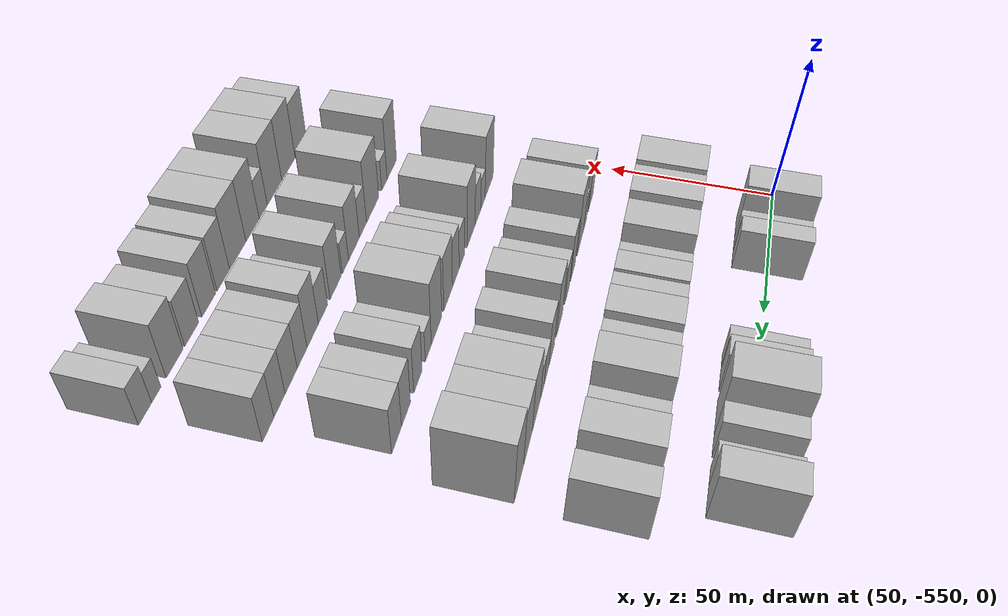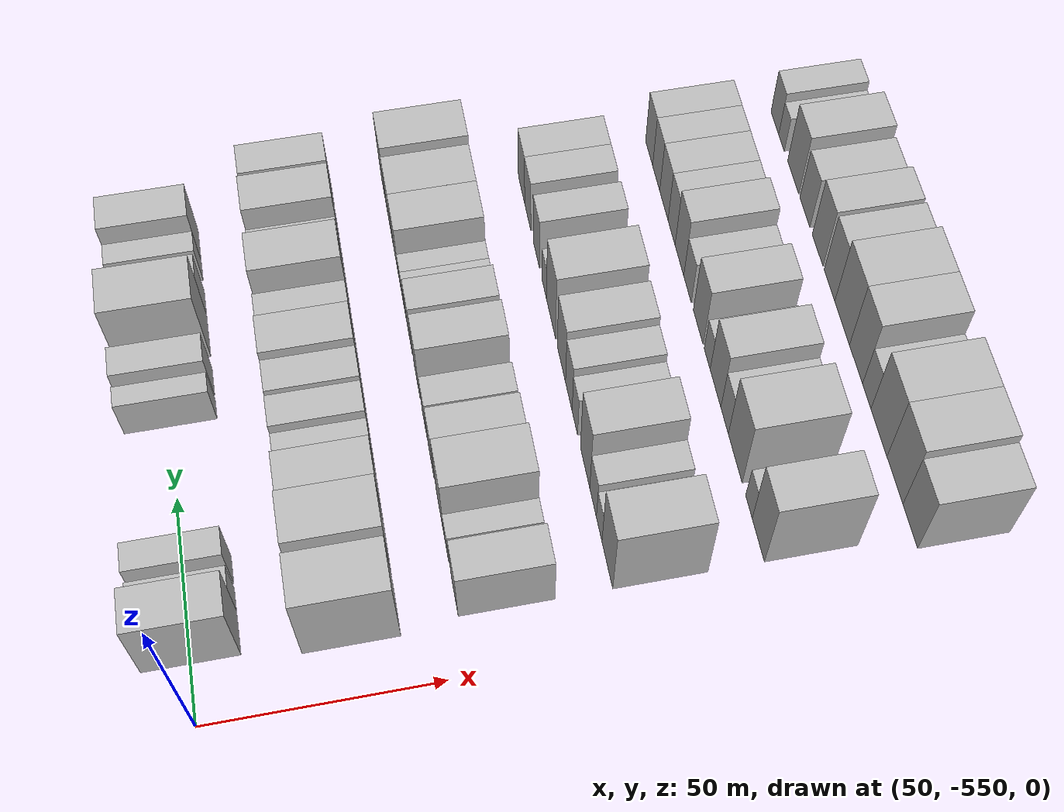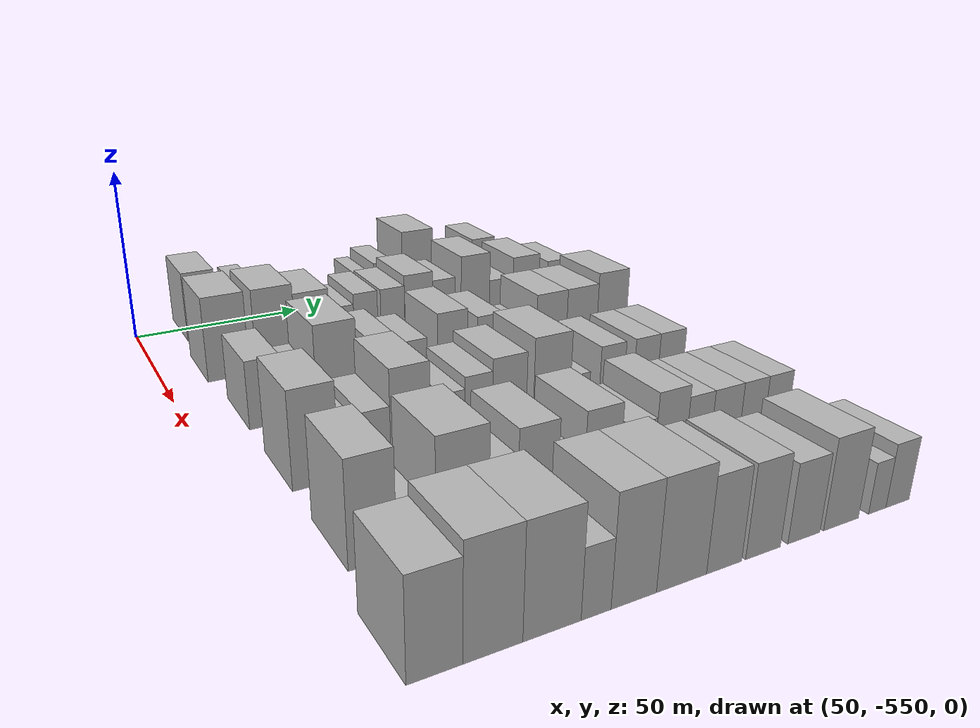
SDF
<sdf version="1.6">
 <world name="default">
  <model name="building_1">
   <static>1</static>
   <pose>50.0000 -532.2511 0 0.000000 0.000000 0.000000</pose>
   <link name="link">
    <pose>0 0 10.50 0 0 0</pose>
    <collision name="collision"><geometry><box><size>20.0000 9.4978 21.0000</size></box></geometry></collision>
    <visual name="visual">
     <cast_shadows>0</cast_shadows>
     <geometry><box><size>20.0000 9.4978 21.0000</size></box></geometry>
     <material>
      <script>
       <uri>model://HANNAS_wall/materials/scripts</uri>
       <uri>model://HANNAS_wall/materials/textures</uri>
       <name>vrc/HANNAS_wall</name>
      </script>
     </material>
    </visual>
   </link>
  </model>
  <model name="building_2">
   <static>1</static>
   <pose>50.0000 -525.0149 0 0.000000 0.000000 0.000000</pose>
   <link name="link">
    <pose>0 0 6.00 0 0 0</pose>
    <collision name="collision"><geometry><box><size>20.0000 4.9746 12.0000</size></box></geometry></collision>
    <visual name="visual">
     <cast_shadows>0</cast_shadows>
     <geometry><box><size>20.0000 4.9746 12.0000</size></box></geometry>
     <material>
      <script>
       <uri>model://HANNAS_wall/materials/scripts</uri>
       <uri>model://HANNAS_wall/materials/textures</uri>
       <name>vrc/HANNAS_wall</name>
      </script>
     </material>
    </visual>
   </link>
  </model>
  <model name="building_3">
   <static>1</static>
   <pose>50.0000 -518.3845 0 0.000000 0.000000 0.000000</pose>
   <link name="link">
    <pose>0 0 7.50 0 0 0</pose>
    <collision name="collision"><geometry><box><size>20.0000 6.2862 15.0000</size></box></geometry></collision>
    <visual name="visual">
     <cast_shadows>0</cast_shadows>
     <geometry><box><size>20.0000 6.2862 15.0000</size></box></geometry>
     <material>
      <script>
       <uri>model://HANNAS_wall/materials/scripts</uri>
       <uri>model://HANNAS_wall/materials/textures</uri>
       <name>vrc/HANNAS_wall</name>
      </script>
     </material>
    </visual>
   </link>
  </model>
  <model name="building_4">
   <static>1</static>
   <pose>50.0000 -479.9255 0 0.000000 0.000000 0.000000</pose>
   <link name="link">
    <pose>0 0 6.00 0 0 0</pose>
    <collision name="collision"><geometry><box><size>20.0000 4.8773 12.0000</size></box></geometry></collision>
    <visual name="visual">
     <cast_shadows>0</cast_shadows>
     <geometry><box><size>20.0000 4.8773 12.0000</size></box></geometry>
     <material>
      <script>
       <uri>model://HANNAS_wall/materials/scripts</uri>
       <uri>model://HANNAS_wall/materials/textures</uri>
       <name>vrc/HANNAS_wall</name>
      </script>
     </material>
    </visual>
   </link>
  </model>
  <model name="building_5">
   <static>1</static>
   <pose>50.0000 -472.9560 0 0.000000 0.000000 0.000000</pose>
   <link name="link">
    <pose>0 0 7.50 0 0 0</pose>
    <collision name="collision"><geometry><box><size>20.0000 7.0617 15.0000</size></box></geometry></collision>
    <visual name="visual">
     <cast_shadows>0</cast_shadows>
     <geometry><box><size>20.0000 7.0617 15.0000</size></box></geometry>
     <material>
      <script>
       <uri>model://HANNAS_wall/materials/scripts</uri>
       <uri>model://HANNAS_wall/materials/textures</uri>
       <name>vrc/HANNAS_wall</name>
      </script>
     </material>
    </visual>
   </link>
  </model>
  <model name="building_6">
   <static>1</static>
   <pose>50.0000 -460.8569 0 0.000000 0.000000 0.000000</pose>
   <link name="link">
    <pose>0 0 12.00 0 0 0</pose>
    <collision name="collision"><geometry><box><size>20.0000 11.1365 24.0000</size></box></geometry></collision>
    <visual name="visual">
     <cast_shadows>0</cast_shadows>
     <geometry><box><size>20.0000 11.1365 24.0000</size></box></geometry>
     <material>
      <script>
       <uri>model://HANNAS_wall/materials/scripts</uri>
       <uri>model://HANNAS_wall/materials/textures</uri>
       <name>vrc/HANNAS_wall</name>
      </script>
     </material>
    </visual>
   </link>
  </model>
  <model name="building_7">
   <static>1</static>
   <pose>50.0000 -452.0662 0 0.000000 0.000000 0.000000</pose>
   <link name="link">
    <pose>0 0 7.50 0 0 0</pose>
    <collision name="collision"><geometry><box><size>20.0000 6.4448 15.0000</size></box></geometry></collision>
    <visual name="visual">
     <cast_shadows>0</cast_shadows>
     <geometry><box><size>20.0000 6.4448 15.0000</size></box></geometry>
     <material>
      <script>
       <uri>model://HANNAS_wall/materials/scripts</uri>
       <uri>model://HANNAS_wall/materials/textures</uri>
       <name>vrc/HANNAS_wall</name>
      </script>
     </material>
    </visual>
   </link>
  </model>
  <model name="building_8">
   <static>1</static>
   <pose>50.0000 -443.1462 0 0.000000 0.000000 0.000000</pose>
   <link name="link">
    <pose>0 0 6.00 0 0 0</pose>
    <collision name="collision"><geometry><box><size>20.0000 5.3953 12.0000</size></box></geometry></collision>
    <visual name="visual">
     <cast_shadows>0</cast_shadows>
     <geometry><box><size>20.0000 5.3953 12.0000</size></box></geometry>
     <material>
      <script>
       <uri>model://HANNAS_wall/materials/scripts</uri>
       <uri>model://HANNAS_wall/materials/textures</uri>
       <name>vrc/HANNAS_wall</name>
      </script>
     </material>
    </visual>
   </link>
  </model>
  <model name="building_9">
   <static>1</static>
   <pose>50.0000 -436.0758 0 0.000000 0.000000 0.000000</pose>
   <link name="link">
    <pose>0 0 9.00 0 0 0</pose>
    <collision name="collision"><geometry><box><size>20.0000 8.7456 18.0000</size></box></geometry></collision>
    <visual name="visual">
     <cast_shadows>0</cast_shadows>
     <geometry><box><size>20.0000 8.7456 18.0000</size></box></geometry>
     <material>
      <script>
       <uri>model://HANNAS_wall/materials/scripts</uri>
       <uri>model://HANNAS_wall/materials/textures</uri>
       <name>vrc/HANNAS_wall</name>
      </script>
     </material>
    </visual>
   </link>
  </model>
  <model name="building_119">
   <static>1</static>
   <pose>82.0000 -533.2695 0 0.000000 0.000000 0.000000</pose>
   <link name="link">
    <pose>0 0 12.00 0 0 0</pose>
    <collision name="collision"><geometry><box><size>20.0000 11.4611 24.0000</size></box></geometry></collision>
    <visual name="visual">
     <cast_shadows>0</cast_shadows>
     <geometry><box><size>20.0000 11.4611 24.0000</size></box></geometry>
     <material>
      <script>
       <uri>model://HANNAS_wall/materials/scripts</uri>
       <uri>model://HANNAS_wall/materials/textures</uri>
       <name>vrc/HANNAS_wall</name>
      </script>
     </material>
    </visual>
   </link>
  </model>
  <model name="building_120">
   <static>1</static>
   <pose>82.0000 -519.7963 0 0.000000 0.000000 0.000000</pose>
   <link name="link">
    <pose>0 0 12.00 0 0 0</pose>
    <collision name="collision"><geometry><box><size>20.0000 11.4853 24.0000</size></box></geometry></collision>
    <visual name="visual">
     <cast_shadows>0</cast_shadows>
     <geometry><box><size>20.0000 11.4853 24.0000</size></box></geometry>
     <material>
      <script>
       <uri>model://HANNAS_wall/materials/scripts</uri>
       <uri>model://HANNAS_wall/materials/textures</uri>
       <name>vrc/HANNAS_wall</name>
      </script>
     </material>
    </visual>
   </link>
  </model>
  <model name="building_121">
   <static>1</static>
   <pose>82.0000 -508.8912 0 0.000000 0.000000 0.000000</pose>
   <link name="link">
    <pose>0 0 10.50 0 0 0</pose>
    <collision name="collision"><geometry><box><size>20.0000 10.3248 21.0000</size></box></geometry></collision>
    <visual name="visual">
     <cast_shadows>0</cast_shadows>
     <geometry><box><size>20.0000 10.3248 21.0000</size></box></geometry>
     <material>
      <script>
       <uri>model://HANNAS_wall/materials/scripts</uri>
       <uri>model://HANNAS_wall/materials/textures</uri>
       <name>vrc/HANNAS_wall</name>
      </script>
     </material>
    </visual>
   </link>
  </model>
  <model name="building_122">
   <static>1</static>
   <pose>82.0000 -499.5550 0 0.000000 0.000000 0.000000</pose>
   <link name="link">
    <pose>0 0 7.50 0 0 0</pose>
    <collision name="collision"><geometry><box><size>20.0000 6.3478 15.0000</size></box></geometry></collision>
    <visual name="visual">
     <cast_shadows>0</cast_shadows>
     <geometry><box><size>20.0000 6.3478 15.0000</size></box></geometry>
     <material>
      <script>
       <uri>model://HANNAS_wall/materials/scripts</uri>
       <uri>model://HANNAS_wall/materials/textures</uri>
       <name>vrc/HANNAS_wall</name>
      </script>
     </material>
    </visual>
   </link>
  </model>
  <model name="building_123">
   <static>1</static>
   <pose>82.0000 -492.7072 0 0.000000 0.000000 0.000000</pose>
   <link name="link">
    <pose>0 0 9.00 0 0 0</pose>
    <collision name="collision"><geometry><box><size>20.0000 7.3478 18.0000</size></box></geometry></collision>
    <visual name="visual">
     <cast_shadows>0</cast_shadows>
     <geometry><box><size>20.0000 7.3478 18.0000</size></box></geometry>
     <material>
      <script>
       <uri>model://HANNAS_wall/materials/scripts</uri>
       <uri>model://HANNAS_wall/materials/textures</uri>
       <name>vrc/HANNAS_wall</name>
      </script>
     </material>
    </visual>
   </link>
  </model>
  <model name="building_124">
   <static>1</static>
   <pose>82.0000 -484.2443 0 0.000000 0.000000 0.000000</pose>
   <link name="link">
    <pose>0 0 9.00 0 0 0</pose>
    <collision name="collision"><geometry><box><size>20.0000 7.5780 18.0000</size></box></geometry></collision>
    <visual name="visual">
     <cast_shadows>0</cast_shadows>
     <geometry><box><size>20.0000 7.5780 18.0000</size></box></geometry>
     <material>
      <script>
       <uri>model://HANNAS_wall/materials/scripts</uri>
       <uri>model://HANNAS_wall/materials/textures</uri>
       <name>vrc/HANNAS_wall</name>
      </script>
     </material>
    </visual>
   </link>
  </model>
  <model name="building_125">
   <static>1</static>
   <pose>82.0000 -475.8263 0 0.000000 0.000000 0.000000</pose>
   <link name="link">
    <pose>0 0 10.50 0 0 0</pose>
    <collision name="collision"><geometry><box><size>20.0000 9.2581 21.0000</size></box></geometry></collision>
    <visual name="visual">
     <cast_shadows>0</cast_shadows>
     <geometry><box><size>20.0000 9.2581 21.0000</size></box></geometry>
     <material>
      <script>
       <uri>model://HANNAS_wall/materials/scripts</uri>
       <uri>model://HANNAS_wall/materials/textures</uri>
       <name>vrc/HANNAS_wall</name>
      </script>
     </material>
    </visual>
   </link>
  </model>
  <model name="building_126">
   <static>1</static>
   <pose>82.0000 -467.4744 0 0.000000 0.000000 0.000000</pose>
   <link name="link">
    <pose>0 0 9.00 0 0 0</pose>
    <collision name="collision"><geometry><box><size>20.0000 7.4457 18.0000</size></box></geometry></collision>
    <visual name="visual">
     <cast_shadows>0</cast_shadows>
     <geometry><box><size>20.0000 7.4457 18.0000</size></box></geometry>
     <material>
      <script>
       <uri>model://HANNAS_wall/materials/scripts</uri>
       <uri>model://HANNAS_wall/materials/textures</uri>
       <name>vrc/HANNAS_wall</name>
      </script>
     </material>
    </visual>
   </link>
  </model>
  <model name="building_127">
   <static>1</static>
   <pose>82.0000 -456.7979 0 0.000000 0.000000 0.000000</pose>
   <link name="link">
    <pose>0 0 12.00 0 0 0</pose>
    <collision name="collision"><geometry><box><size>20.0000 9.9073 24.0000</size></box></geometry></collision>
    <visual name="visual">
     <cast_shadows>0</cast_shadows>
     <geometry><box><size>20.0000 9.9073 24.0000</size></box></geometry>
     <material>
      <script>
       <uri>model://HANNAS_wall/materials/scripts</uri>
       <uri>model://HANNAS_wall/materials/textures</uri>
       <name>vrc/HANNAS_wall</name>
      </script>
     </material>
    </visual>
   </link>
  </model>
  <model name="building_128">
   <static>1</static>
   <pose>82.0000 -448.2143 0 0.000000 0.000000 0.000000</pose>
   <link name="link">
    <pose>0 0 7.50 0 0 0</pose>
    <collision name="collision"><geometry><box><size>20.0000 7.2599 15.0000</size></box></geometry></collision>
    <visual name="visual">
     <cast_shadows>0</cast_shadows>
     <geometry><box><size>20.0000 7.2599 15.0000</size></box></geometry>
     <material>
      <script>
       <uri>model://HANNAS_wall/materials/scripts</uri>
       <uri>model://HANNAS_wall/materials/textures</uri>
       <name>vrc/HANNAS_wall</name>
      </script>
     </material>
    </visual>
   </link>
  </model>
  <model name="building_129">
   <static>1</static>
   <pose>82.0000 -438.8242 0 0.000000 0.000000 0.000000</pose>
   <link name="link">
    <pose>0 0 10.50 0 0 0</pose>
    <collision name="collision"><geometry><box><size>20.0000 9.5202 21.0000</size></box></geometry></collision>
    <visual name="visual">
     <cast_shadows>0</cast_shadows>
     <geometry><box><size>20.0000 9.5202 21.0000</size></box></geometry>
     <material>
      <script>
       <uri>model://HANNAS_wall/materials/scripts</uri>
       <uri>model://HANNAS_wall/materials/textures</uri>
       <name>vrc/HANNAS_wall</name>
      </script>
     </material>
    </visual>
   </link>
  </model>
  <model name="building_130">
   <static>1</static>
   <pose>82.0000 -427.0173 0 0.000000 0.000000 0.000000</pose>
   <link name="link">
    <pose>0 0 9.00 0 0 0</pose>
    <collision name="collision"><geometry><box><size>20.0000 8.0935 18.0000</size></box></geometry></collision>
    <visual name="visual">
     <cast_shadows>0</cast_shadows>
     <geometry><box><size>20.0000 8.0935 18.0000</size></box></geometry>
     <material>
      <script>
       <uri>model://HANNAS_wall/materials/scripts</uri>
       <uri>model://HANNAS_wall/materials/textures</uri>
       <name>vrc/HANNAS_wall</name>
      </script>
     </material>
    </visual>
   </link>
  </model>
  <model name="building_236">
   <static>1</static>
   <pose>114.0000 -532.5828 0 0.000000 0.000000 0.000000</pose>
   <link name="link">
    <pose>0 0 9.00 0 0 0</pose>
    <collision name="collision"><geometry><box><size>20.0000 8.8345 18.0000</size></box></geometry></collision>
    <visual name="visual">
     <cast_shadows>0</cast_shadows>
     <geometry><box><size>20.0000 8.8345 18.0000</size></box></geometry>
     <material>
      <script>
       <uri>model://HANNAS_wall/materials/scripts</uri>
       <uri>model://HANNAS_wall/materials/textures</uri>
       <name>vrc/HANNAS_wall</name>
      </script>
     </material>
    </visual>
   </link>
  </model>
  <model name="building_237">
   <static>1</static>
   <pose>114.0000 -522.3978 0 0.000000 0.000000 0.000000</pose>
   <link name="link">
    <pose>0 0 6.00 0 0 0</pose>
    <collision name="collision"><geometry><box><size>20.0000 5.5355 12.0000</size></box></geometry></collision>
    <visual name="visual">
     <cast_shadows>0</cast_shadows>
     <geometry><box><size>20.0000 5.5355 12.0000</size></box></geometry>
     <material>
      <script>
       <uri>model://HANNAS_wall/materials/scripts</uri>
       <uri>model://HANNAS_wall/materials/textures</uri>
       <name>vrc/HANNAS_wall</name>
      </script>
     </material>
    </visual>
   </link>
  </model>
  <model name="building_238">
   <static>1</static>
   <pose>114.0000 -514.1011 0 0.000000 0.000000 0.000000</pose>
   <link name="link">
    <pose>0 0 12.00 0 0 0</pose>
    <collision name="collision"><geometry><box><size>20.0000 11.0580 24.0000</size></box></geometry></collision>
    <visual name="visual">
     <cast_shadows>0</cast_shadows>
     <geometry><box><size>20.0000 11.0580 24.0000</size></box></geometry>
     <material>
      <script>
       <uri>model://HANNAS_wall/materials/scripts</uri>
       <uri>model://HANNAS_wall/materials/textures</uri>
       <name>vrc/HANNAS_wall</name>
      </script>
     </material>
    </visual>
   </link>
  </model>
  <model name="building_239">
   <static>1</static>
   <pose>114.0000 -501.7870 0 0.000000 0.000000 0.000000</pose>
   <link name="link">
    <pose>0 0 9.00 0 0 0</pose>
    <collision name="collision"><geometry><box><size>20.0000 7.5701 18.0000</size></box></geometry></collision>
    <visual name="visual">
     <cast_shadows>0</cast_shadows>
     <geometry><box><size>20.0000 7.5701 18.0000</size></box></geometry>
     <material>
      <script>
       <uri>model://HANNAS_wall/materials/scripts</uri>
       <uri>model://HANNAS_wall/materials/textures</uri>
       <name>vrc/HANNAS_wall</name>
      </script>
     </material>
    </visual>
   </link>
  </model>
  <model name="building_240">
   <static>1</static>
   <pose>114.0000 -492.4184 0 0.000000 0.000000 0.000000</pose>
   <link name="link">
    <pose>0 0 7.50 0 0 0</pose>
    <collision name="collision"><geometry><box><size>20.0000 7.1670 15.0000</size></box></geometry></collision>
    <visual name="visual">
     <cast_shadows>0</cast_shadows>
     <geometry><box><size>20.0000 7.1670 15.0000</size></box></geometry>
     <material>
      <script>
       <uri>model://HANNAS_wall/materials/scripts</uri>
       <uri>model://HANNAS_wall/materials/textures</uri>
       <name>vrc/HANNAS_wall</name>
      </script>
     </material>
    </visual>
   </link>
  </model>
  <model name="building_241">
   <static>1</static>
   <pose>114.0000 -481.3632 0 0.000000 0.000000 0.000000</pose>
   <link name="link">
    <pose>0 0 10.50 0 0 0</pose>
    <collision name="collision"><geometry><box><size>20.0000 8.9433 21.0000</size></box></geometry></collision>
    <visual name="visual">
     <cast_shadows>0</cast_shadows>
     <geometry><box><size>20.0000 8.9433 21.0000</size></box></geometry>
     <material>
      <script>
       <uri>model://HANNAS_wall/materials/scripts</uri>
       <uri>model://HANNAS_wall/materials/textures</uri>
       <name>vrc/HANNAS_wall</name>
      </script>
     </material>
    </visual>
   </link>
  </model>
  <model name="building_242">
   <static>1</static>
   <pose>114.0000 -469.8865 0 0.000000 0.000000 0.000000</pose>
   <link name="link">
    <pose>0 0 9.00 0 0 0</pose>
    <collision name="collision"><geometry><box><size>20.0000 8.0102 18.0000</size></box></geometry></collision>
    <visual name="visual">
     <cast_shadows>0</cast_shadows>
     <geometry><box><size>20.0000 8.0102 18.0000</size></box></geometry>
     <material>
      <script>
       <uri>model://HANNAS_wall/materials/scripts</uri>
       <uri>model://HANNAS_wall/materials/textures</uri>
       <name>vrc/HANNAS_wall</name>
      </script>
     </material>
    </visual>
   </link>
  </model>
  <model name="building_243">
   <static>1</static>
   <pose>114.0000 -462.9352 0 0.000000 0.000000 0.000000</pose>
   <link name="link">
    <pose>0 0 6.00 0 0 0</pose>
    <collision name="collision"><geometry><box><size>20.0000 5.8923 12.0000</size></box></geometry></collision>
    <visual name="visual">
     <cast_shadows>0</cast_shadows>
     <geometry><box><size>20.0000 5.8923 12.0000</size></box></geometry>
     <material>
      <script>
       <uri>model://HANNAS_wall/materials/scripts</uri>
       <uri>model://HANNAS_wall/materials/textures</uri>
       <name>vrc/HANNAS_wall</name>
      </script>
     </material>
    </visual>
   </link>
  </model>
  <model name="building_244">
   <static>1</static>
   <pose>114.0000 -457.5829 0 0.000000 0.000000 0.000000</pose>
   <link name="link">
    <pose>0 0 6.00 0 0 0</pose>
    <collision name="collision"><geometry><box><size>20.0000 4.8123 12.0000</size></box></geometry></collision>
    <visual name="visual">
     <cast_shadows>0</cast_shadows>
     <geometry><box><size>20.0000 4.8123 12.0000</size></box></geometry>
     <material>
      <script>
       <uri>model://HANNAS_wall/materials/scripts</uri>
       <uri>model://HANNAS_wall/materials/textures</uri>
       <name>vrc/HANNAS_wall</name>
      </script>
     </material>
    </visual>
   </link>
  </model>
  <model name="building_245">
   <static>1</static>
   <pose>114.0000 -450.1814 0 0.000000 0.000000 0.000000</pose>
   <link name="link">
    <pose>0 0 10.50 0 0 0</pose>
    <collision name="collision"><geometry><box><size>20.0000 9.9908 21.0000</size></box></geometry></collision>
    <visual name="visual">
     <cast_shadows>0</cast_shadows>
     <geometry><box><size>20.0000 9.9908 21.0000</size></box></geometry>
     <material>
      <script>
       <uri>model://HANNAS_wall/materials/scripts</uri>
       <uri>model://HANNAS_wall/materials/textures</uri>
       <name>vrc/HANNAS_wall</name>
      </script>
     </material>
    </visual>
   </link>
  </model>
  <model name="building_246">
   <static>1</static>
   <pose>114.0000 -439.9721 0 0.000000 0.000000 0.000000</pose>
   <link name="link">
    <pose>0 0 10.50 0 0 0</pose>
    <collision name="collision"><geometry><box><size>20.0000 10.4276 21.0000</size></box></geometry></collision>
    <visual name="visual">
     <cast_shadows>0</cast_shadows>
     <geometry><box><size>20.0000 10.4276 21.0000</size></box></geometry>
     <material>
      <script>
       <uri>model://HANNAS_wall/materials/scripts</uri>
       <uri>model://HANNAS_wall/materials/textures</uri>
       <name>vrc/HANNAS_wall</name>
      </script>
     </material>
    </visual>
   </link>
  </model>
  <model name="building_247">
   <static>1</static>
   <pose>114.0000 -429.5344 0 0.000000 0.000000 0.000000</pose>
   <link name="link">
    <pose>0 0 12.00 0 0 0</pose>
    <collision name="collision"><geometry><box><size>20.0000 10.4477 24.0000</size></box></geometry></collision>
    <visual name="visual">
     <cast_shadows>0</cast_shadows>
     <geometry><box><size>20.0000 10.4477 24.0000</size></box></geometry>
     <material>
      <script>
       <uri>model://HANNAS_wall/materials/scripts</uri>
       <uri>model://HANNAS_wall/materials/textures</uri>
       <name>vrc/HANNAS_wall</name>
      </script>
     </material>
    </visual>
   </link>
  </model>
  <model name="building_354">
   <static>1</static>
   <pose>146.0000 -531.6611 0 0.000000 0.000000 0.000000</pose>
   <link name="link">
    <pose>0 0 12.00 0 0 0</pose>
    <collision name="collision"><geometry><box><size>20.0000 10.6779 24.0000</size></box></geometry></collision>
    <visual name="visual">
     <cast_shadows>0</cast_shadows>
     <geometry><box><size>20.0000 10.6779 24.0000</size></box></geometry>
     <material>
      <script>
       <uri>model://HANNAS_wall/materials/scripts</uri>
       <uri>model://HANNAS_wall/materials/textures</uri>
       <name>vrc/HANNAS_wall</name>
      </script>
     </material>
    </visual>
   </link>
  </model>
  <model name="building_355">
   <static>1</static>
   <pose>146.0000 -523.4784 0 0.000000 0.000000 0.000000</pose>
   <link name="link">
    <pose>0 0 6.00 0 0 0</pose>
    <collision name="collision"><geometry><box><size>20.0000 5.6874 12.0000</size></box></geometry></collision>
    <visual name="visual">
     <cast_shadows>0</cast_shadows>
     <geometry><box><size>20.0000 5.6874 12.0000</size></box></geometry>
     <material>
      <script>
       <uri>model://HANNAS_wall/materials/scripts</uri>
       <uri>model://HANNAS_wall/materials/textures</uri>
       <name>vrc/HANNAS_wall</name>
      </script>
     </material>
    </visual>
   </link>
  </model>
  <model name="building_356">
   <static>1</static>
   <pose>146.0000 -517.1987 0 0.000000 0.000000 0.000000</pose>
   <link name="link">
    <pose>0 0 7.50 0 0 0</pose>
    <collision name="collision"><geometry><box><size>20.0000 6.8720 15.0000</size></box></geometry></collision>
    <visual name="visual">
     <cast_shadows>0</cast_shadows>
     <geometry><box><size>20.0000 6.8720 15.0000</size></box></geometry>
     <material>
      <script>
       <uri>model://HANNAS_wall/materials/scripts</uri>
       <uri>model://HANNAS_wall/materials/textures</uri>
       <name>vrc/HANNAS_wall</name>
      </script>
     </material>
    </visual>
   </link>
  </model>
  <model name="building_357">
   <static>1</static>
   <pose>146.0000 -508.8113 0 0.000000 0.000000 0.000000</pose>
   <link name="link">
    <pose>0 0 12.00 0 0 0</pose>
    <collision name="collision"><geometry><box><size>20.0000 9.9028 24.0000</size></box></geometry></collision>
    <visual name="visual">
     <cast_shadows>0</cast_shadows>
     <geometry><box><size>20.0000 9.9028 24.0000</size></box></geometry>
     <material>
      <script>
       <uri>model://HANNAS_wall/materials/scripts</uri>
       <uri>model://HANNAS_wall/materials/textures</uri>
       <name>vrc/HANNAS_wall</name>
      </script>
     </material>
    </visual>
   </link>
  </model>
  <model name="building_358">
   <static>1</static>
   <pose>146.0000 -497.8550 0 0.000000 0.000000 0.000000</pose>
   <link name="link">
    <pose>0 0 7.50 0 0 0</pose>
    <collision name="collision"><geometry><box><size>20.0000 6.0098 15.0000</size></box></geometry></collision>
    <visual name="visual">
     <cast_shadows>0</cast_shadows>
     <geometry><box><size>20.0000 6.0098 15.0000</size></box></geometry>
     <material>
      <script>
       <uri>model://HANNAS_wall/materials/scripts</uri>
       <uri>model://HANNAS_wall/materials/textures</uri>
       <name>vrc/HANNAS_wall</name>
      </script>
     </material>
    </visual>
   </link>
  </model>
  <model name="building_359">
   <static>1</static>
   <pose>146.0000 -491.1796 0 0.000000 0.000000 0.000000</pose>
   <link name="link">
    <pose>0 0 9.00 0 0 0</pose>
    <collision name="collision"><geometry><box><size>20.0000 7.3410 18.0000</size></box></geometry></collision>
    <visual name="visual">
     <cast_shadows>0</cast_shadows>
     <geometry><box><size>20.0000 7.3410 18.0000</size></box></geometry>
     <material>
      <script>
       <uri>model://HANNAS_wall/materials/scripts</uri>
       <uri>model://HANNAS_wall/materials/textures</uri>
       <name>vrc/HANNAS_wall</name>
      </script>
     </material>
    </visual>
   </link>
  </model>
  <model name="building_360">
   <static>1</static>
   <pose>146.0000 -482.8429 0 0.000000 0.000000 0.000000</pose>
   <link name="link">
    <pose>0 0 10.50 0 0 0</pose>
    <collision name="collision"><geometry><box><size>20.0000 9.3323 21.0000</size></box></geometry></collision>
    <visual name="visual">
     <cast_shadows>0</cast_shadows>
     <geometry><box><size>20.0000 9.3323 21.0000</size></box></geometry>
     <material>
      <script>
       <uri>model://HANNAS_wall/materials/scripts</uri>
       <uri>model://HANNAS_wall/materials/textures</uri>
       <name>vrc/HANNAS_wall</name>
      </script>
     </material>
    </visual>
   </link>
  </model>
  <model name="building_361">
   <static>1</static>
   <pose>146.0000 -470.8926 0 0.000000 0.000000 0.000000</pose>
   <link name="link">
    <pose>0 0 12.00 0 0 0</pose>
    <collision name="collision"><geometry><box><size>20.0000 10.5683 24.0000</size></box></geometry></collision>
    <visual name="visual">
     <cast_shadows>0</cast_shadows>
     <geometry><box><size>20.0000 10.5683 24.0000</size></box></geometry>
     <material>
      <script>
       <uri>model://HANNAS_wall/materials/scripts</uri>
       <uri>model://HANNAS_wall/materials/textures</uri>
       <name>vrc/HANNAS_wall</name>
      </script>
     </material>
    </visual>
   </link>
  </model>
  <model name="building_362">
   <static>1</static>
   <pose>146.0000 -462.7102 0 0.000000 0.000000 0.000000</pose>
   <link name="link">
    <pose>0 0 6.00 0 0 0</pose>
    <collision name="collision"><geometry><box><size>20.0000 5.7966 12.0000</size></box></geometry></collision>
    <visual name="visual">
     <cast_shadows>0</cast_shadows>
     <geometry><box><size>20.0000 5.7966 12.0000</size></box></geometry>
     <material>
      <script>
       <uri>model://HANNAS_wall/materials/scripts</uri>
       <uri>model://HANNAS_wall/materials/textures</uri>
       <name>vrc/HANNAS_wall</name>
      </script>
     </material>
    </visual>
   </link>
  </model>
  <model name="building_363">
   <static>1</static>
   <pose>146.0000 -453.0077 0 0.000000 0.000000 0.000000</pose>
   <link name="link">
    <pose>0 0 9.00 0 0 0</pose>
    <collision name="collision"><geometry><box><size>20.0000 7.6085 18.0000</size></box></geometry></collision>
    <visual name="visual">
     <cast_shadows>0</cast_shadows>
     <geometry><box><size>20.0000 7.6085 18.0000</size></box></geometry>
     <material>
      <script>
       <uri>model://HANNAS_wall/materials/scripts</uri>
       <uri>model://HANNAS_wall/materials/textures</uri>
       <name>vrc/HANNAS_wall</name>
      </script>
     </material>
    </visual>
   </link>
  </model>
  <model name="building_364">
   <static>1</static>
   <pose>146.0000 -442.3148 0 0.000000 0.000000 0.000000</pose>
   <link name="link">
    <pose>0 0 9.00 0 0 0</pose>
    <collision name="collision"><geometry><box><size>20.0000 7.7773 18.0000</size></box></geometry></collision>
    <visual name="visual">
     <cast_shadows>0</cast_shadows>
     <geometry><box><size>20.0000 7.7773 18.0000</size></box></geometry>
     <material>
      <script>
       <uri>model://HANNAS_wall/materials/scripts</uri>
       <uri>model://HANNAS_wall/materials/textures</uri>
       <name>vrc/HANNAS_wall</name>
      </script>
     </material>
    </visual>
   </link>
  </model>
  <model name="building_365">
   <static>1</static>
   <pose>146.0000 -434.2873 0 0.000000 0.000000 0.000000</pose>
   <link name="link">
    <pose>0 0 9.00 0 0 0</pose>
    <collision name="collision"><geometry><box><size>20.0000 8.2778 18.0000</size></box></geometry></collision>
    <visual name="visual">
     <cast_shadows>0</cast_shadows>
     <geometry><box><size>20.0000 8.2778 18.0000</size></box></geometry>
     <material>
      <script>
       <uri>model://HANNAS_wall/materials/scripts</uri>
       <uri>model://HANNAS_wall/materials/textures</uri>
       <name>vrc/HANNAS_wall</name>
      </script>
     </material>
    </visual>
   </link>
  </model>
  <model name="building_463">
   <static>1</static>
   <pose>178.0000 -532.0016 0 0.000000 0.000000 0.000000</pose>
   <link name="link">
    <pose>0 0 12.00 0 0 0</pose>
    <collision name="collision"><geometry><box><size>20.0000 9.9969 24.0000</size></box></geometry></collision>
    <visual name="visual">
     <cast_shadows>0</cast_shadows>
     <geometry><box><size>20.0000 9.9969 24.0000</size></box></geometry>
     <material>
      <script>
       <uri>model://HANNAS_wall/materials/scripts</uri>
       <uri>model://HANNAS_wall/materials/textures</uri>
       <name>vrc/HANNAS_wall</name>
      </script>
     </material>
    </visual>
   </link>
  </model>
  <model name="building_464">
   <static>1</static>
   <pose>178.0000 -524.2873 0 0.000000 0.000000 0.000000</pose>
   <link name="link">
    <pose>0 0 6.00 0 0 0</pose>
    <collision name="collision"><geometry><box><size>20.0000 5.4316 12.0000</size></box></geometry></collision>
    <visual name="visual">
     <cast_shadows>0</cast_shadows>
     <geometry><box><size>20.0000 5.4316 12.0000</size></box></geometry>
     <material>
      <script>
       <uri>model://HANNAS_wall/materials/scripts</uri>
       <uri>model://HANNAS_wall/materials/textures</uri>
       <name>vrc/HANNAS_wall</name>
      </script>
     </material>
    </visual>
   </link>
  </model>
  <model name="building_465">
   <static>1</static>
   <pose>178.0000 -512.6097 0 0.000000 0.000000 0.000000</pose>
   <link name="link">
    <pose>0 0 12.00 0 0 0</pose>
    <collision name="collision"><geometry><box><size>20.0000 11.9235 24.0000</size></box></geometry></collision>
    <visual name="visual">
     <cast_shadows>0</cast_shadows>
     <geometry><box><size>20.0000 11.9235 24.0000</size></box></geometry>
     <material>
      <script>
       <uri>model://HANNAS_wall/materials/scripts</uri>
       <uri>model://HANNAS_wall/materials/textures</uri>
       <name>vrc/HANNAS_wall</name>
      </script>
     </material>
    </visual>
   </link>
  </model>
  <model name="building_466">
   <static>1</static>
   <pose>178.0000 -503.3058 0 0.000000 0.000000 0.000000</pose>
   <link name="link">
    <pose>0 0 7.50 0 0 0</pose>
    <collision name="collision"><geometry><box><size>20.0000 6.6842 15.0000</size></box></geometry></collision>
    <visual name="visual">
     <cast_shadows>0</cast_shadows>
     <geometry><box><size>20.0000 6.6842 15.0000</size></box></geometry>
     <material>
      <script>
       <uri>model://HANNAS_wall/materials/scripts</uri>
       <uri>model://HANNAS_wall/materials/textures</uri>
       <name>vrc/HANNAS_wall</name>
      </script>
     </material>
    </visual>
   </link>
  </model>
  <model name="building_467">
   <static>1</static>
   <pose>178.0000 -495.1122 0 0.000000 0.000000 0.000000</pose>
   <link name="link">
    <pose>0 0 10.50 0 0 0</pose>
    <collision name="collision"><geometry><box><size>20.0000 9.7031 21.0000</size></box></geometry></collision>
    <visual name="visual">
     <cast_shadows>0</cast_shadows>
     <geometry><box><size>20.0000 9.7031 21.0000</size></box></geometry>
     <material>
      <script>
       <uri>model://HANNAS_wall/materials/scripts</uri>
       <uri>model://HANNAS_wall/materials/textures</uri>
       <name>vrc/HANNAS_wall</name>
      </script>
     </material>
    </visual>
   </link>
  </model>
  <model name="building_468">
   <static>1</static>
   <pose>178.0000 -487.5029 0 0.000000 0.000000 0.000000</pose>
   <link name="link">
    <pose>0 0 6.00 0 0 0</pose>
    <collision name="collision"><geometry><box><size>20.0000 5.5154 12.0000</size></box></geometry></collision>
    <visual name="visual">
     <cast_shadows>0</cast_shadows>
     <geometry><box><size>20.0000 5.5154 12.0000</size></box></geometry>
     <material>
      <script>
       <uri>model://HANNAS_wall/materials/scripts</uri>
       <uri>model://HANNAS_wall/materials/textures</uri>
       <name>vrc/HANNAS_wall</name>
      </script>
     </material>
    </visual>
   </link>
  </model>
  <model name="building_469">
   <static>1</static>
   <pose>178.0000 -479.0853 0 0.000000 0.000000 0.000000</pose>
   <link name="link">
    <pose>0 0 10.50 0 0 0</pose>
    <collision name="collision"><geometry><box><size>20.0000 9.3199 21.0000</size></box></geometry></collision>
    <visual name="visual">
     <cast_shadows>0</cast_shadows>
     <geometry><box><size>20.0000 9.3199 21.0000</size></box></geometry>
     <material>
      <script>
       <uri>model://HANNAS_wall/materials/scripts</uri>
       <uri>model://HANNAS_wall/materials/textures</uri>
       <name>vrc/HANNAS_wall</name>
      </script>
     </material>
    </visual>
   </link>
  </model>
  <model name="building_470">
   <static>1</static>
   <pose>178.0000 -468.7597 0 0.000000 0.000000 0.000000</pose>
   <link name="link">
    <pose>0 0 7.50 0 0 0</pose>
    <collision name="collision"><geometry><box><size>20.0000 7.3312 15.0000</size></box></geometry></collision>
    <visual name="visual">
     <cast_shadows>0</cast_shadows>
     <geometry><box><size>20.0000 7.3312 15.0000</size></box></geometry>
     <material>
      <script>
       <uri>model://HANNAS_wall/materials/scripts</uri>
       <uri>model://HANNAS_wall/materials/textures</uri>
       <name>vrc/HANNAS_wall</name>
      </script>
     </material>
    </visual>
   </link>
  </model>
  <model name="building_471">
   <static>1</static>
   <pose>178.0000 -460.7468 0 0.000000 0.000000 0.000000</pose>
   <link name="link">
    <pose>0 0 10.50 0 0 0</pose>
    <collision name="collision"><geometry><box><size>20.0000 8.6947 21.0000</size></box></geometry></collision>
    <visual name="visual">
     <cast_shadows>0</cast_shadows>
     <geometry><box><size>20.0000 8.6947 21.0000</size></box></geometry>
     <material>
      <script>
       <uri>model://HANNAS_wall/materials/scripts</uri>
       <uri>model://HANNAS_wall/materials/textures</uri>
       <name>vrc/HANNAS_wall</name>
      </script>
     </material>
    </visual>
   </link>
  </model>
  <model name="building_472">
   <static>1</static>
   <pose>178.0000 -452.7964 0 0.000000 0.000000 0.000000</pose>
   <link name="link">
    <pose>0 0 9.00 0 0 0</pose>
    <collision name="collision"><geometry><box><size>20.0000 7.2060 18.0000</size></box></geometry></collision>
    <visual name="visual">
     <cast_shadows>0</cast_shadows>
     <geometry><box><size>20.0000 7.2060 18.0000</size></box></geometry>
     <material>
      <script>
       <uri>model://HANNAS_wall/materials/scripts</uri>
       <uri>model://HANNAS_wall/materials/textures</uri>
       <name>vrc/HANNAS_wall</name>
      </script>
     </material>
    </visual>
   </link>
  </model>
  <model name="building_473">
   <static>1</static>
   <pose>178.0000 -444.8985 0 0.000000 0.000000 0.000000</pose>
   <link name="link">
    <pose>0 0 9.00 0 0 0</pose>
    <collision name="collision"><geometry><box><size>20.0000 8.5899 18.0000</size></box></geometry></collision>
    <visual name="visual">
     <cast_shadows>0</cast_shadows>
     <geometry><box><size>20.0000 8.5899 18.0000</size></box></geometry>
     <material>
      <script>
       <uri>model://HANNAS_wall/materials/scripts</uri>
       <uri>model://HANNAS_wall/materials/textures</uri>
       <name>vrc/HANNAS_wall</name>
      </script>
     </material>
    </visual>
   </link>
  </model>
  <model name="building_474">
   <static>1</static>
   <pose>178.0000 -436.8361 0 0.000000 0.000000 0.000000</pose>
   <link name="link">
    <pose>0 0 9.00 0 0 0</pose>
    <collision name="collision"><geometry><box><size>20.0000 7.5348 18.0000</size></box></geometry></collision>
    <visual name="visual">
     <cast_shadows>0</cast_shadows>
     <geometry><box><size>20.0000 7.5348 18.0000</size></box></geometry>
     <material>
      <script>
       <uri>model://HANNAS_wall/materials/scripts</uri>
       <uri>model://HANNAS_wall/materials/textures</uri>
       <name>vrc/HANNAS_wall</name>
      </script>
     </material>
    </visual>
   </link>
  </model>
  <model name="building_475">
   <static>1</static>
   <pose>178.0000 -429.2681 0 0.000000 0.000000 0.000000</pose>
   <link name="link">
    <pose>0 0 9.00 0 0 0</pose>
    <collision name="collision"><geometry><box><size>20.0000 7.6012 18.0000</size></box></geometry></collision>
    <visual name="visual">
     <cast_shadows>0</cast_shadows>
     <geometry><box><size>20.0000 7.6012 18.0000</size></box></geometry>
     <material>
      <script>
       <uri>model://HANNAS_wall/materials/scripts</uri>
       <uri>model://HANNAS_wall/materials/textures</uri>
       <name>vrc/HANNAS_wall</name>
      </script>
     </material>
    </visual>
   </link>
  </model>
  <model name="building_590">
   <static>1</static>
   <pose>210.0000 -534.8723 0 0.000000 0.000000 0.000000</pose>
   <link name="link">
    <pose>0 0 10.50 0 0 0</pose>
    <collision name="collision"><geometry><box><size>20.0000 10.2554 21.0000</size></box></geometry></collision>
    <visual name="visual">
     <cast_shadows>0</cast_shadows>
     <geometry><box><size>20.0000 10.2554 21.0000</size></box></geometry>
     <material>
      <script>
       <uri>model://HANNAS_wall/materials/scripts</uri>
       <uri>model://HANNAS_wall/materials/textures</uri>
       <name>vrc/HANNAS_wall</name>
      </script>
     </material>
    </visual>
   </link>
  </model>
  <model name="building_591">
   <static>1</static>
   <pose>210.0000 -524.0222 0 0.000000 0.000000 0.000000</pose>
   <link name="link">
    <pose>0 0 12.00 0 0 0</pose>
    <collision name="collision"><geometry><box><size>20.0000 11.4447 24.0000</size></box></geometry></collision>
    <visual name="visual">
     <cast_shadows>0</cast_shadows>
     <geometry><box><size>20.0000 11.4447 24.0000</size></box></geometry>
     <material>
      <script>
       <uri>model://HANNAS_wall/materials/scripts</uri>
       <uri>model://HANNAS_wall/materials/textures</uri>
       <name>vrc/HANNAS_wall</name>
      </script>
     </material>
    </visual>
   </link>
  </model>
  <model name="building_592">
   <static>1</static>
   <pose>210.0000 -512.3708 0 0.000000 0.000000 0.000000</pose>
   <link name="link">
    <pose>0 0 12.00 0 0 0</pose>
    <collision name="collision"><geometry><box><size>20.0000 11.8582 24.0000</size></box></geometry></collision>
    <visual name="visual">
     <cast_shadows>0</cast_shadows>
     <geometry><box><size>20.0000 11.8582 24.0000</size></box></geometry>
     <material>
      <script>
       <uri>model://HANNAS_wall/materials/scripts</uri>
       <uri>model://HANNAS_wall/materials/textures</uri>
       <name>vrc/HANNAS_wall</name>
      </script>
     </material>
    </visual>
   </link>
  </model>
  <model name="building_593">
   <static>1</static>
   <pose>210.0000 -503.2458 0 0.000000 0.000000 0.000000</pose>
   <link name="link">
    <pose>0 0 7.50 0 0 0</pose>
    <collision name="collision"><geometry><box><size>20.0000 6.3917 15.0000</size></box></geometry></collision>
    <visual name="visual">
     <cast_shadows>0</cast_shadows>
     <geometry><box><size>20.0000 6.3917 15.0000</size></box></geometry>
     <material>
      <script>
       <uri>model://HANNAS_wall/materials/scripts</uri>
       <uri>model://HANNAS_wall/materials/textures</uri>
       <name>vrc/HANNAS_wall</name>
      </script>
     </material>
    </visual>
   </link>
  </model>
  <model name="building_594">
   <static>1</static>
   <pose>210.0000 -494.9908 0 0.000000 0.000000 0.000000</pose>
   <link name="link">
    <pose>0 0 12.00 0 0 0</pose>
    <collision name="collision"><geometry><box><size>20.0000 10.1183 24.0000</size></box></geometry></collision>
    <visual name="visual">
     <cast_shadows>0</cast_shadows>
     <geometry><box><size>20.0000 10.1183 24.0000</size></box></geometry>
     <material>
      <script>
       <uri>model://HANNAS_wall/materials/scripts</uri>
       <uri>model://HANNAS_wall/materials/textures</uri>
       <name>vrc/HANNAS_wall</name>
      </script>
     </material>
    </visual>
   </link>
  </model>
  <model name="building_595">
   <static>1</static>
   <pose>210.0000 -484.0331 0 0.000000 0.000000 0.000000</pose>
   <link name="link">
    <pose>0 0 12.00 0 0 0</pose>
    <collision name="collision"><geometry><box><size>20.0000 11.7971 24.0000</size></box></geometry></collision>
    <visual name="visual">
     <cast_shadows>0</cast_shadows>
     <geometry><box><size>20.0000 11.7971 24.0000</size></box></geometry>
     <material>
      <script>
       <uri>model://HANNAS_wall/materials/scripts</uri>
       <uri>model://HANNAS_wall/materials/textures</uri>
       <name>vrc/HANNAS_wall</name>
      </script>
     </material>
    </visual>
   </link>
  </model>
  <model name="building_596">
   <static>1</static>
   <pose>210.0000 -473.7869 0 0.000000 0.000000 0.000000</pose>
   <link name="link">
    <pose>0 0 10.50 0 0 0</pose>
    <collision name="collision"><geometry><box><size>20.0000 8.6954 21.0000</size></box></geometry></collision>
    <visual name="visual">
     <cast_shadows>0</cast_shadows>
     <geometry><box><size>20.0000 8.6954 21.0000</size></box></geometry>
     <material>
      <script>
       <uri>model://HANNAS_wall/materials/scripts</uri>
       <uri>model://HANNAS_wall/materials/textures</uri>
       <name>vrc/HANNAS_wall</name>
      </script>
     </material>
    </visual>
   </link>
  </model>
  <model name="building_597">
   <static>1</static>
   <pose>210.0000 -463.9226 0 0.000000 0.000000 0.000000</pose>
   <link name="link">
    <pose>0 0 10.50 0 0 0</pose>
    <collision name="collision"><geometry><box><size>20.0000 9.0333 21.0000</size></box></geometry></collision>
    <visual name="visual">
     <cast_shadows>0</cast_shadows>
     <geometry><box><size>20.0000 9.0333 21.0000</size></box></geometry>
     <material>
      <script>
       <uri>model://HANNAS_wall/materials/scripts</uri>
       <uri>model://HANNAS_wall/materials/textures</uri>
       <name>vrc/HANNAS_wall</name>
      </script>
     </material>
    </visual>
   </link>
  </model>
  <model name="building_598">
   <static>1</static>
   <pose>210.0000 -453.0251 0 0.000000 0.000000 0.000000</pose>
   <link name="link">
    <pose>0 0 9.00 0 0 0</pose>
    <collision name="collision"><geometry><box><size>20.0000 8.7616 18.0000</size></box></geometry></collision>
    <visual name="visual">
     <cast_shadows>0</cast_shadows>
     <geometry><box><size>20.0000 8.7616 18.0000</size></box></geometry>
     <material>
      <script>
       <uri>model://HANNAS_wall/materials/scripts</uri>
       <uri>model://HANNAS_wall/materials/textures</uri>
       <name>vrc/HANNAS_wall</name>
      </script>
     </material>
    </visual>
   </link>
  </model>
  <model name="building_599">
   <static>1</static>
   <pose>210.0000 -442.6556 0 0.000000 0.000000 0.000000</pose>
   <link name="link">
    <pose>0 0 10.50 0 0 0</pose>
    <collision name="collision"><geometry><box><size>20.0000 9.9773 21.0000</size></box></geometry></collision>
    <visual name="visual">
     <cast_shadows>0</cast_shadows>
     <geometry><box><size>20.0000 9.9773 21.0000</size></box></geometry>
     <material>
      <script>
       <uri>model://HANNAS_wall/materials/scripts</uri>
       <uri>model://HANNAS_wall/materials/textures</uri>
       <name>vrc/HANNAS_wall</name>
      </script>
     </material>
    </visual>
   </link>
  </model>
  <model name="building_600">
   <static>1</static>
   <pose>210.0000 -432.0743 0 0.000000 0.000000 0.000000</pose>
   <link name="link">
    <pose>0 0 6.00 0 0 0</pose>
    <collision name="collision"><geometry><box><size>20.0000 5.1854 12.0000</size></box></geometry></collision>
    <visual name="visual">
     <cast_shadows>0</cast_shadows>
     <geometry><box><size>20.0000 5.1854 12.0000</size></box></geometry>
     <material>
      <script>
       <uri>model://HANNAS_wall/materials/scripts</uri>
       <uri>model://HANNAS_wall/materials/textures</uri>
       <name>vrc/HANNAS_wall</name>
      </script>
     </material>
    </visual>
   </link>
  </model>
  <model name="building_601">
   <static>1</static>
   <pose>210.0000 -425.9170 0 0.000000 0.000000 0.000000</pose>
   <link name="link">
    <pose>0 0 7.50 0 0 0</pose>
    <collision name="collision"><geometry><box><size>20.0000 7.1292 15.0000</size></box></geometry></collision>
    <visual name="visual">
     <cast_shadows>0</cast_shadows>
     <geometry><box><size>20.0000 7.1292 15.0000</size></box></geometry>
     <material>
      <script>
       <uri>model://HANNAS_wall/materials/scripts</uri>
       <uri>model://HANNAS_wall/materials/textures</uri>
       <name>vrc/HANNAS_wall</name>
      </script>
     </material>
    </visual>
   </link>
  </model>
 </world>
</sdf>
